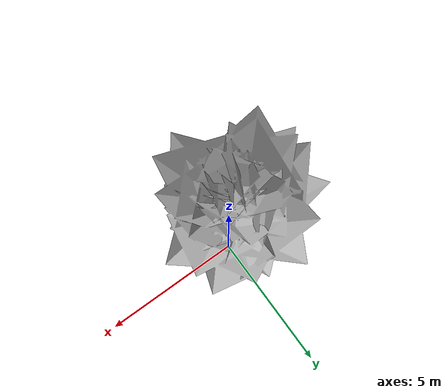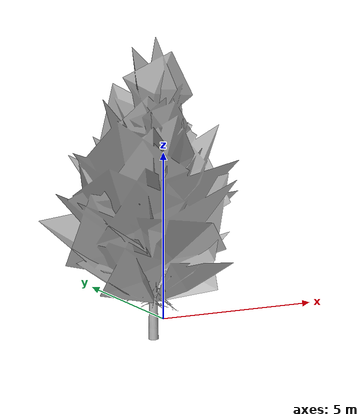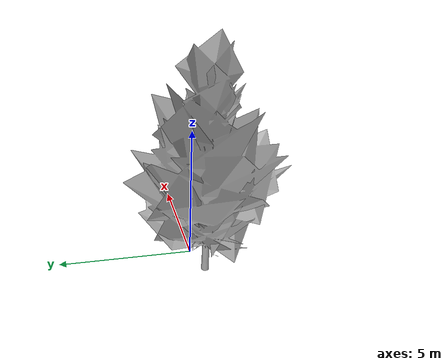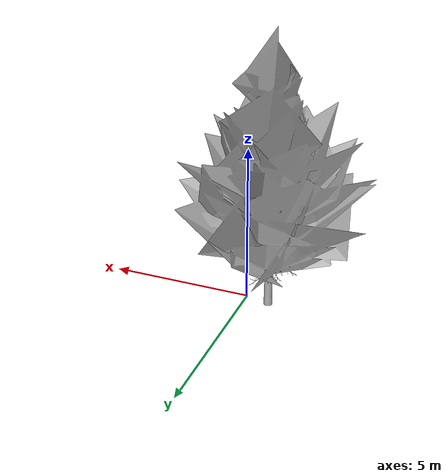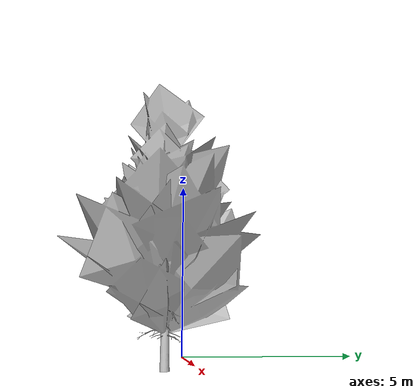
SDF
<?xml version="1.0" ?>
<sdf version="1.5">
  <model name="tree_type2">
    <static>true</static>
    <link name="link">
      <pose>0 0 0 0 0 0</pose>
        <collision name="collision">
        <geometry>
          <box>
            <size>0.3 0.3 10</size>
          </box>
        </geometry>
      </collision>
      <visual name="visual">
        <cast_shadows>true</cast_shadows>
        <geometry>
          <mesh>
              <uri>model://tree_type2/meshes/model.stl</uri>
            <scale>1 1 1</scale>
          </mesh>
        </geometry>
        <material>
          <script>
            <uri>model://tree_type2/materials/scripts</uri>
            <uri>model://tree_type2/materials/textures</uri>
            <name>tree_type2/Diffuse</name>
          </script>
        </material>
      </visual>
    </link>
  </model>
</sdf>
